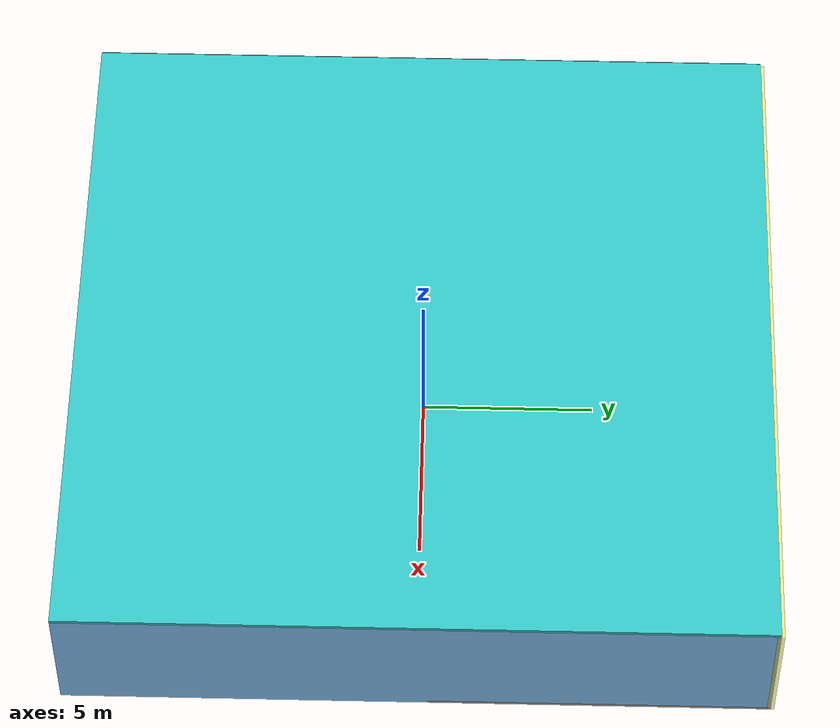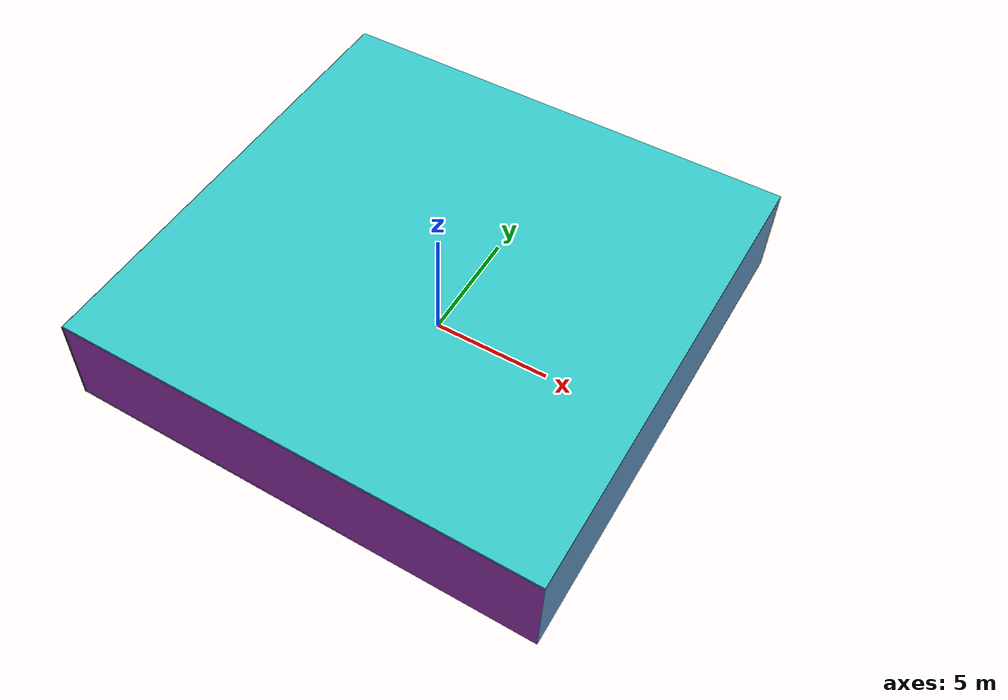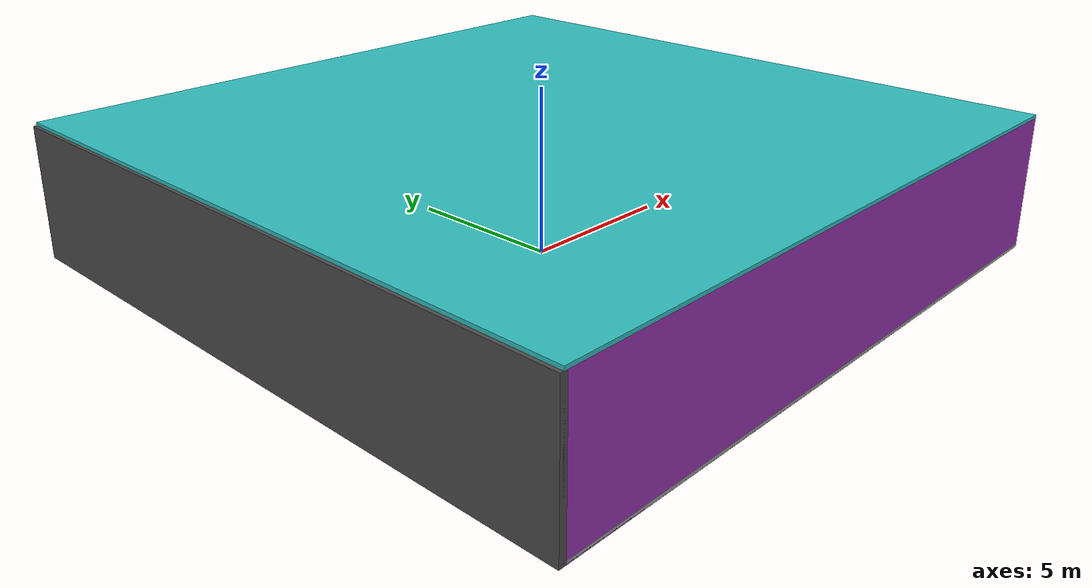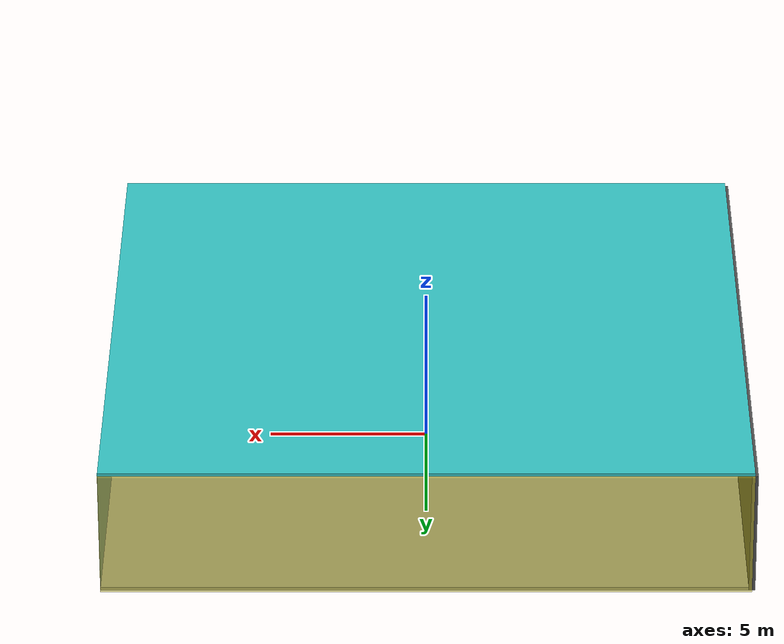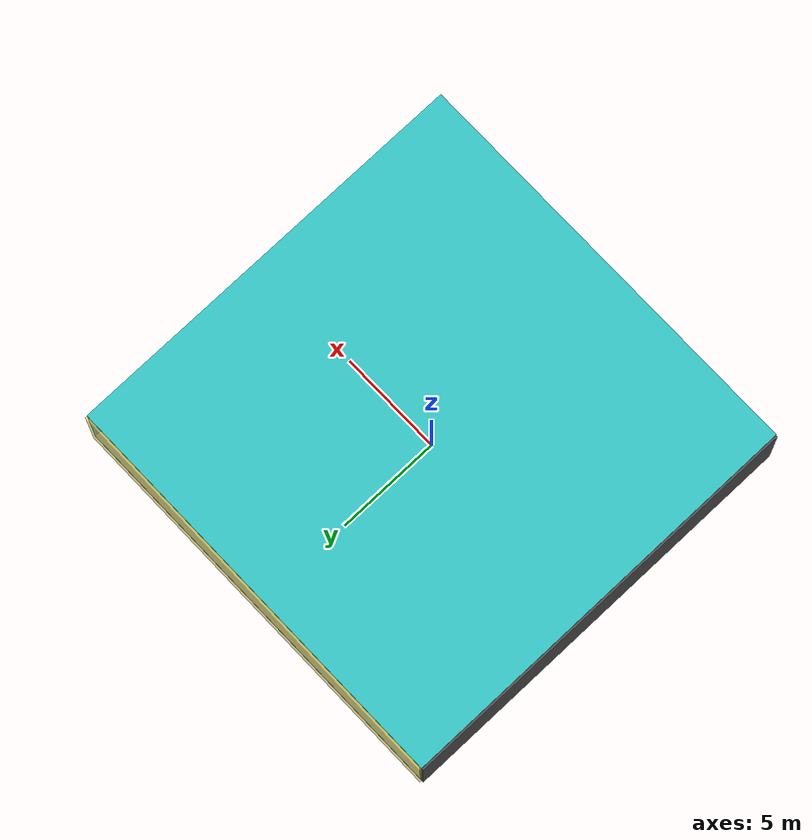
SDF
<sdf version="1.4">
 <world name="default">
  <physics type="ode">
   <max_step_size>0.001</max_step_size>
   <real_time_factor>1</real_time_factor>
   <real_time_update_rate>1000</real_time_update_rate>
   <gravity>0 0 -9.8</gravity>
  </physics>
  <scene><ambient>0.4 0.4 0.4 1</ambient><background>0.7 0.7 0.7 1</background><shadows>1</shadows></scene>
  <model name="Surrounding">
   <static>1</static>
   <link name="Ceiling">
    <collision name="Ceiling_Collision"><geometry><box><size>20 20 0.1</size></box></geometry></collision>
    <visual name="Ceiling_Visual">
     <geometry><box><size>20 20 0.1</size></box></geometry>
     <material>
      <script><uri>file://media/materials/scripts/gazebo.material</uri><name>Gazebo/TurquoiseGlow</name></script>
     </material>
    </visual>
    <pose>0 0 4.05 0 0 0</pose>
   </link>
   <link name="Wall_South">
    <collision name="Wall_South_Collision">
     <geometry><box><size>20 0 4</size></box></geometry>
     <pose>0 0 2 0 -0 0</pose>
    </collision>
    <visual name="Wall_South_Visual">
     <pose>0 0 2 0 -0 0</pose>
     <geometry><box><size>20 0 4</size></box></geometry>
     <material>
      <script><uri>file://media/materials/scripts/gazebo.material</uri><name>Gazebo/PurpleGlow</name></script>
     </material>
    </visual>
    <velocity_decay><linear>0</linear><angular>0</angular></velocity_decay>
    <pose>0 -10 0 0 -0 0</pose>
   </link>
   <link name="Wall_East">
    <collision name="Wall_21_Collision">
     <geometry><box><size>20 0 4</size></box></geometry>
     <pose>0 0 2 0 -0 0</pose>
    </collision>
    <visual name="Wall_21_Visual">
     <pose>0 0 2 0 -0 0</pose>
     <geometry><box><size>20 0 4</size></box></geometry>
     <material>
      <script><uri>file://media/materials/scripts/gazebo.material</uri><name>Gazebo/SkyBlue</name></script>
     </material>
    </visual>
    <velocity_decay><linear>0</linear><angular>0</angular></velocity_decay>
    <pose>10 0 0 0 -0 1.5708</pose>
   </link>
   <link name="Wall_North">
    <collision name="Wall_22_Collision">
     <geometry><box><size>20 0.2 4</size></box></geometry>
     <pose>0 0 2 0 -0 0</pose>
    </collision>
    <visual name="Wall_22_Visual">
     <pose>0 0 2 0 -0 0</pose>
     <geometry><box><size>20 0.2 4</size></box></geometry>
     <material>
      <script>
       <uri>file://media/materials/scripts/gazebo.material</uri>
       <name>Gazebo/YellowTransparent</name>
      </script>
     </material>
    </visual>
    <velocity_decay><linear>0</linear><angular>0</angular></velocity_decay>
    <pose>0 10 0 0 -0 0</pose>
   </link>
   <link name="Wall_West">
    <collision name="Wall_23_Collision">
     <geometry><box><size>20 0.2 4</size></box></geometry>
     <pose>0 0 2 0 -0 0</pose>
    </collision>
    <visual name="Wall_23_Visual">
     <pose>0 0 2 0 -0 0</pose>
     <geometry><box><size>20 0.2 4</size></box></geometry>
     <material>
      <script><uri>file://media/materials/scripts/gazebo.material</uri><name>Gazebo/DarkGrey</name></script>
     </material>
    </visual>
    <velocity_decay><linear>0</linear><angular>0</angular></velocity_decay>
    <pose>-10 0 0 0 0 -1.5708</pose>
   </link>
   <link name="Ground_link">
    <collision name="collision">
     <pose>0 0 .05 0 -0 0</pose>
     <geometry><box><size>20 20 0.1</size></box></geometry>
    </collision>
    <visual name="visual">
     <pose>0 0 .05 0 -0 0</pose>
     <geometry><box><size>20 20 0.1</size></box></geometry>
     <material>
      <script><uri>file://media/materials/scripts/gazebo.material</uri><name>Gazebo/GreyGradientSky</name></script>
     </material>
    </visual>
   </link>
   <static>1</static>
  </model>
  <spherical_coordinates>
   <surface_model>EARTH_WGS84</surface_model>
   <latitude_deg>0</latitude_deg>
   <longitude_deg>0</longitude_deg>
   <elevation>0</elevation>
   <heading_deg>0</heading_deg>
  </spherical_coordinates>
  <light name="lightball_0" type="diffuse">
   <diffuse>0.8 0.8 0.8 1</diffuse>
   <specular>0.2 0.2 0.2 1</specular>
   <attenuation>
    <range>100</range>
    <constant>0.7</constant>
    <linear>0.01</linear>
    <quadratic>0.001</quadratic>
   </attenuation>
   <direction>-0.5 0.1 -0.9</direction>
   <pose>-1.99702294649 9.78478862 1.32927749849 0 0 0</pose>
  </light>
  <light name="lightball_1" type="diffuse">
   <diffuse>0.8 0.8 0.8 1</diffuse>
   <specular>0.2 0.2 0.2 1</specular>
   <attenuation>
    <range>100</range>
    <constant>0.7</constant>
    <linear>0.01</linear>
    <quadratic>0.001</quadratic>
   </attenuation>
   <direction>-0.5 0.1 -0.9</direction>
   <pose>4.56333467744 7.95169895824 1.90232383543 0 0 0</pose>
  </light>
  <light name="lightball_2" type="diffuse">
   <diffuse>0.8 0.8 0.8 1</diffuse>
   <specular>0.2 0.2 0.2 1</specular>
   <attenuation>
    <range>100</range>
    <constant>0.7</constant>
    <linear>0.01</linear>
    <quadratic>0.001</quadratic>
   </attenuation>
   <direction>-0.5 0.1 -0.9</direction>
   <pose>2.04878068685 0.985467170952 2.10853981174 0 0 0</pose>
  </light>
  <light name="lightball_3" type="diffuse">
   <diffuse>0.8 0.8 0.8 1</diffuse>
   <specular>0.2 0.2 0.2 1</specular>
   <attenuation>
    <range>100</range>
    <constant>0.7</constant>
    <linear>0.01</linear>
    <quadratic>0.001</quadratic>
   </attenuation>
   <direction>-0.5 0.1 -0.9</direction>
   <pose>0.0983959040221 6.05648264114 0.508524169314 0 0 0</pose>
  </light>
  <light name="lightball_4" type="diffuse">
   <diffuse>0.8 0.8 0.8 1</diffuse>
   <specular>0.2 0.2 0.2 1</specular>
   <attenuation>
    <range>100</range>
    <constant>0.7</constant>
    <linear>0.01</linear>
    <quadratic>0.001</quadratic>
   </attenuation>
   <direction>-0.5 0.1 -0.9</direction>
   <pose>6.36028730501 -9.86916183157 1.1853650113 0 0 0</pose>
  </light>
  <light name="lightball_5" type="diffuse">
   <diffuse>0.8 0.8 0.8 1</diffuse>
   <specular>0.2 0.2 0.2 1</specular>
   <attenuation>
    <range>100</range>
    <constant>0.7</constant>
    <linear>0.01</linear>
    <quadratic>0.001</quadratic>
   </attenuation>
   <direction>-0.5 0.1 -0.9</direction>
   <pose>3.83147172796 -2.61032640266 3.72306639577 0 0 0</pose>
  </light>
  <light name="lightball_6" type="diffuse">
   <diffuse>0.8 0.8 0.8 1</diffuse>
   <specular>0.2 0.2 0.2 1</specular>
   <attenuation>
    <range>100</range>
    <constant>0.7</constant>
    <linear>0.01</linear>
    <quadratic>0.001</quadratic>
   </attenuation>
   <direction>-0.5 0.1 -0.9</direction>
   <pose>9.04536407674 1.88171881116 2.02553770894 0 0 0</pose>
  </light>
  <light name="lightball_7" type="diffuse">
   <diffuse>0.8 0.8 0.8 1</diffuse>
   <specular>0.2 0.2 0.2 1</specular>
   <attenuation>
    <range>100</range>
    <constant>0.7</constant>
    <linear>0.01</linear>
    <quadratic>0.001</quadratic>
   </attenuation>
   <direction>-0.5 0.1 -0.9</direction>
   <pose>7.39099962652 6.58929011692 2.85120070048 0 0 0</pose>
  </light>
  <light name="lightball_8" type="diffuse">
   <diffuse>0.8 0.8 0.8 1</diffuse>
   <specular>0.2 0.2 0.2 1</specular>
   <attenuation>
    <range>100</range>
    <constant>0.7</constant>
    <linear>0.01</linear>
    <quadratic>0.001</quadratic>
   </attenuation>
   <direction>-0.5 0.1 -0.9</direction>
   <pose>5.13274563302 -2.86182852118 0.597851620095 0 0 0</pose>
  </light>
  <light name="lightball_9" type="diffuse">
   <diffuse>0.8 0.8 0.8 1</diffuse>
   <specular>0.2 0.2 0.2 1</specular>
   <attenuation>
    <range>100</range>
    <constant>0.7</constant>
    <linear>0.01</linear>
    <quadratic>0.001</quadratic>
   </attenuation>
   <direction>-0.5 0.1 -0.9</direction>
   <pose>9.64871063711 1.32863273188 2.14399560169 0 0 0</pose>
  </light>
  <light name="lightball_10" type="diffuse">
   <diffuse>0.8 0.8 0.8 1</diffuse>
   <specular>0.2 0.2 0.2 1</specular>
   <attenuation>
    <range>100</range>
    <constant>0.7</constant>
    <linear>0.01</linear>
    <quadratic>0.001</quadratic>
   </attenuation>
   <direction>-0.5 0.1 -0.9</direction>
   <pose>-5.02883739486 7.44687687277 3.81987377167 0 0 0</pose>
  </light>
  <light name="lightball_11" type="diffuse">
   <diffuse>0.8 0.8 0.8 1</diffuse>
   <specular>0.2 0.2 0.2 1</specular>
   <attenuation>
    <range>100</range>
    <constant>0.7</constant>
    <linear>0.01</linear>
    <quadratic>0.001</quadratic>
   </attenuation>
   <direction>-0.5 0.1 -0.9</direction>
   <pose>-6.53535799209 1.22034490111 1.20869716003 0 0 0</pose>
  </light>
  <light name="lightball_12" type="diffuse">
   <diffuse>0.8 0.8 0.8 1</diffuse>
   <specular>0.2 0.2 0.2 1</specular>
   <attenuation>
    <range>100</range>
    <constant>0.7</constant>
    <linear>0.01</linear>
    <quadratic>0.001</quadratic>
   </attenuation>
   <direction>-0.5 0.1 -0.9</direction>
   <pose>-3.75543542066 -6.80079610847 1.68073363078 0 0 0</pose>
  </light>
  <include>
   <uri>model://robocup_3Dsim_goal</uri>
   <pose>6.7705684648 -7.07175551318 0 0 0 2.68315113018</pose>
  </include>
 </world>
</sdf>

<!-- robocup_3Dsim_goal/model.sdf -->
<sdf version="1.5">
  <model name="robocup_3d_goal">
    <static>true</static>
    <link name="left_post">
      <pose>0 1.05 0.45 0 0 0</pose>
      <collision name="collision">
        <geometry>
          <cylinder>
            <radius>0.05</radius>
            <length>0.9</length>
          </cylinder>
        </geometry>
      </collision>
      <visual name="visual">
        <geometry>
          <cylinder>
            <radius>0.05</radius>
            <length>0.9</length>
          </cylinder>
        </geometry>
        <material>
          <script>
            <uri>file://media/materials/scripts/gazebo.material</uri>
            <name>Gazebo/ZincYellow</name>
          </script>
        </material>
      </visual>
    </link>
    <link name="left_support_horiz_lower">
      <pose>0.30 1.05 0.01 0 0 0</pose>
      <collision name="collision">
        <geometry>
          <box>
            <size>0.50 0.02 0.02</size>
          </box>
        </geometry>
      </collision>
      <visual name="visual">
        <geometry>
          <box>
            <size>0.50 0.02 0.02</size>
          </box>
        </geometry>
        <material>
          <script>
            <uri>file://media/materials/scripts/gazebo.material</uri>
            <name>Gazebo/White</name>
          </script>
        </material>
      </visual>
    </link>
    <link name="left_support_horiz_upper">
      <pose>0.30 1.05 0.79 0 0 0</pose>
      <collision name="collision">
        <geometry>
          <box>
            <size>0.50 0.02 0.02</size>
          </box>
        </geometry>
      </collision>
      <visual name="visual">
        <geometry>
          <box>
            <size>0.50 0.02 0.02</size>
          </box>
        </geometry>
        <material>
          <script>
            <uri>file://media/materials/scripts/gazebo.material</uri>
            <name>Gazebo/White</name>
          </script>
        </material>
      </visual>
    </link>
    <link name="left_support_vertical">
      <pose>0.56 1.05 0.4 0 1.5708 0</pose>
      <collision name="collision">
        <geometry>
          <box>
            <size>0.80 0.02 0.02</size>
          </box>
        </geometry>
      </collision>
      <visual name="visual">
        <geometry>
          <box>
            <size>0.80 0.02 0.02</size>
          </box>
        </geometry>
        <material>
          <script>
            <uri>file://media/materials/scripts/gazebo.material</uri>
            <name>Gazebo/White</name>
          </script>
        </material>
      </visual>
    </link>
    <link name="right_support_horiz_lower">
      <pose>0.30 -1.05 0.01 0 0 0</pose>
      <collision name="collision">
        <geometry>
          <box>
            <size>0.50 0.02 0.02</size>
          </box>
        </geometry>
      </collision>
      <visual name="visual">
        <geometry>
          <box>
            <size>0.50 0.02 0.02</size>
          </box>
        </geometry>
        <material>
          <script>
            <uri>file://media/materials/scripts/gazebo.material</uri>
            <name>Gazebo/White</name>
          </script>
        </material>
      </visual>
    </link>
    <link name="right_support_horiz_upper">
      <pose>0.30 -1.05 0.79 0 0 0</pose>
      <collision name="collision">
        <geometry>
          <box>
            <size>0.50 0.02 0.02</size>
          </box>
        </geometry>
      </collision>
      <visual name="visual">
        <geometry>
          <box>
            <size>0.50 0.02 0.02</size>
          </box>
        </geometry>
        <material>
          <script>
            <uri>file://media/materials/scripts/gazebo.material</uri>
            <name>Gazebo/White</name>
          </script>
        </material>
      </visual>
    </link>
    <link name="right_support_vertical">
      <pose>0.56 -1.05 0.4 0 1.5708 0</pose>
      <collision name="collision">
        <geometry>
          <box>
            <size>0.80 0.02 0.02</size>
          </box>
        </geometry>
      </collision>
      <visual name="visual">
        <geometry>
          <box>
            <size>0.80 0.02 0.02</size>
          </box>
        </geometry>
        <material>
          <script>
            <uri>file://media/materials/scripts/gazebo.material</uri>
            <name>Gazebo/White</name>
          </script>
        </material>
      </visual>
    </link>
    <link name="center_support_horiz_lower">
      <pose>0.56 0 0.01 0 1.5708 0</pose>
      <collision name="collision">
        <geometry>
          <box>
            <size>0.02 2.08 0.02</size>
          </box>
        </geometry>
      </collision>
      <visual name="visual">
        <geometry>
          <box>
            <size>0.02 2.08 0.02</size>
          </box>
        </geometry>
        <material>
          <script>
            <uri>file://media/materials/scripts/gazebo.material</uri>
            <name>Gazebo/White</name>
          </script>
        </material>
      </visual>
    </link>
    <link name="center_support_horiz_upper">
      <pose>0.56 0 0.79 0 1.5708 0</pose>
      <collision name="collision">
        <geometry>
          <box>
            <size>0.02 2.08 0.02</size>
          </box>
        </geometry>
      </collision>
      <visual name="visual">
        <geometry>
          <box>
            <size>0.02 2.08 0.02</size>
          </box>
        </geometry>
        <material>
          <script>
            <uri>file://media/materials/scripts/gazebo.material</uri>
            <name>Gazebo/White</name>
          </script>
        </material>
      </visual>
    </link>
    <link name="right_post">
      <pose>0 -1.05 0.45 0 0 0</pose>
      <collision name="collision">
        <geometry>
          <cylinder>
            <radius>0.05</radius>
            <length>0.9</length>
          </cylinder>
        </geometry>
      </collision>
      <visual name="visual">
        <geometry>
          <cylinder>
            <radius>0.05</radius>
            <length>0.9</length>
          </cylinder>
        </geometry>
        <material>
          <script>
            <uri>file://media/materials/scripts/gazebo.material</uri>
            <name>Gazebo/ZincYellow</name>
          </script>
        </material>
      </visual>
    </link>
    <link name="crossbar">
      <pose>0 0 0.85 1.57 1.57 0</pose>
      <collision name="collision">
        <geometry>
          <cylinder>
            <radius>0.05</radius>
            <length>2.0</length>
          </cylinder>
        </geometry>
      </collision>
      <visual name="visual">
        <geometry>
          <cylinder>
            <radius>0.05</radius>
            <length>2.0</length>
          </cylinder>
        </geometry>
        <material>
          <script>
            <uri>file://media/materials/scripts/gazebo.material</uri>
            <name>Gazebo/ZincYellow</name>
          </script>
        </material>
      </visual>
    </link>
    <link name="center_net">
      <pose>0.56 0 0.40 0 0 0</pose>
      <collision name="collision">
        <geometry>
          <box>
            <size>0.01 2.1 0.80</size>
          </box>
        </geometry>
      </collision>
      <visual name="visual">
        <geometry>
          <box>
            <size>0.01 2.1 0.80</size>
          </box>
        </geometry>
        <material>
          <script>
            <uri>model://../model_source/models/robocup09_spl_field/materials/scripts/</uri>
            <uri>model://../model_source/models/robocup09_spl_field/materials/textures/</uri>
            <name>RoboCup/Net</name>
          </script>
        </material>
      </visual>
    </link>
    <link name="left_net">
      <pose>0.30 1.05 0.40 0 0 0</pose>
      <collision name="collision">
        <geometry>
          <box>
            <size>0.50 0.01 0.76</size>
          </box>
        </geometry>
      </collision>
      <visual name="visual">
        <geometry>
          <box>
            <size>0.50 0.01 0.76</size>
          </box>
        </geometry>
        <material>
          <script>
            <uri>model://../model_source/models/robocup09_spl_field/materials/scripts/</uri>
            <uri>model://../model_source/models/robocup09_spl_field/materials/textures/</uri>
            <name>RoboCup/Net</name>
          </script>
        </material>
      </visual>
    </link>
    <link name="right_net">
      <pose>0.30 -1.05 0.40 0 0 0</pose>
      <collision name="collision">
        <geometry>
          <box>
            <size>0.50 0.01 0.76</size>
          </box>
        </geometry>
      </collision>
      <visual name="visual">
        <geometry>
          <box>
            <size>0.50 0.01 0.76</size>
          </box>
        </geometry>
        <material>
          <script>
            <uri>model://../model_source/models/robocup09_spl_field/materials/scripts/</uri>
            <uri>model://../model_source/models/robocup09_spl_field/materials/textures/</uri>
            <name>RoboCup/Net</name>
          </script>
        </material>
      </visual>
    </link>
  </model>
</sdf>
